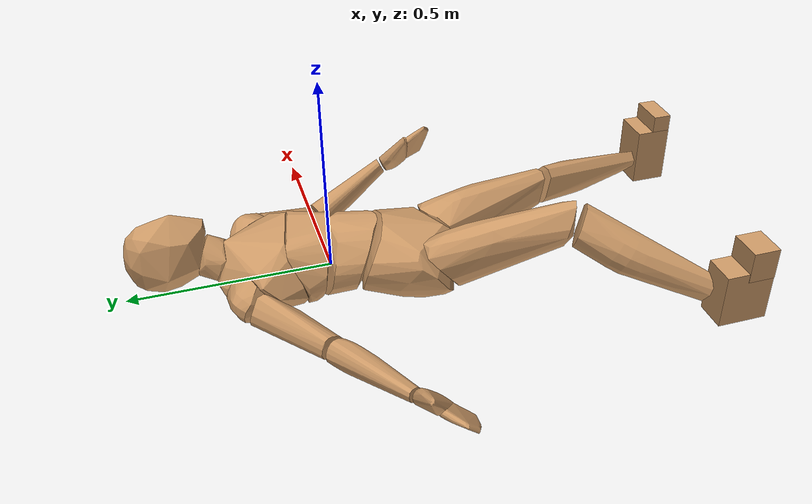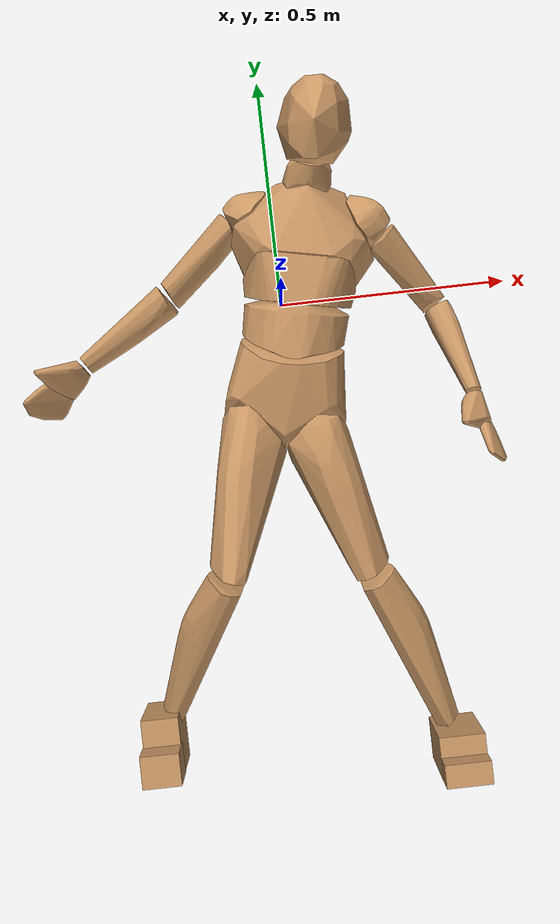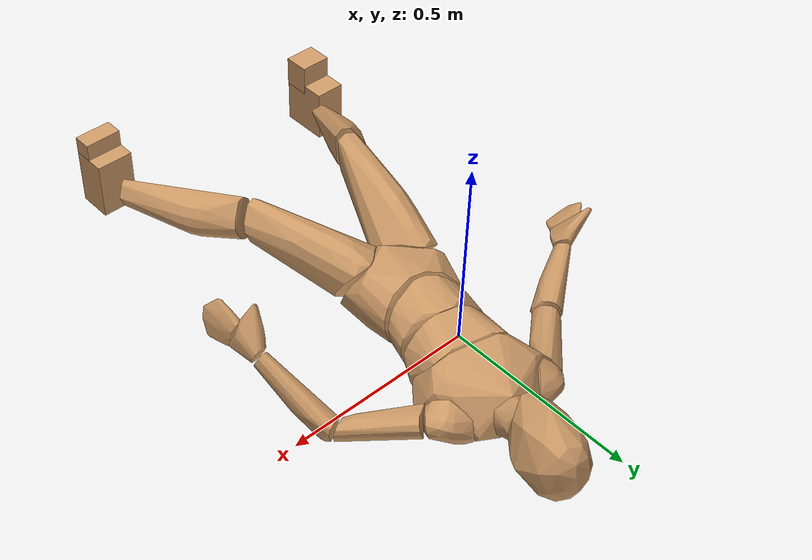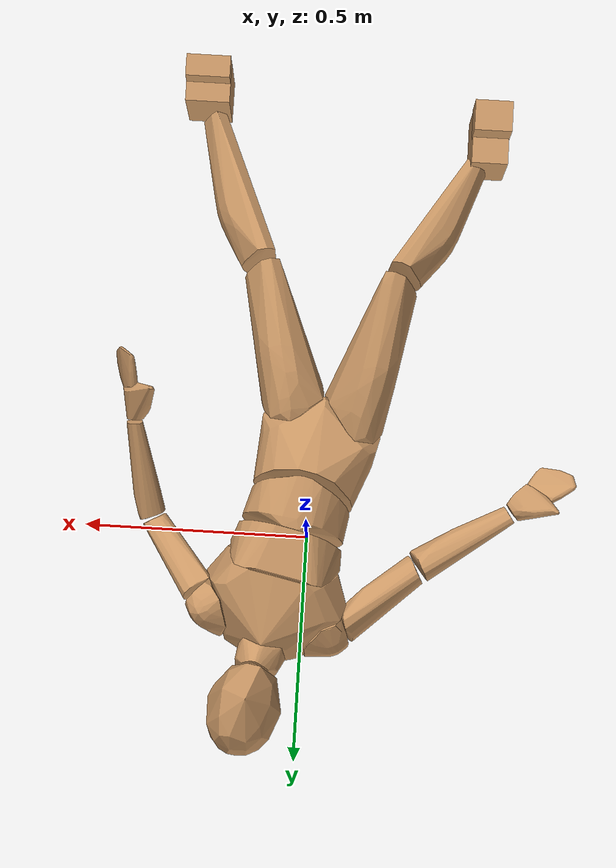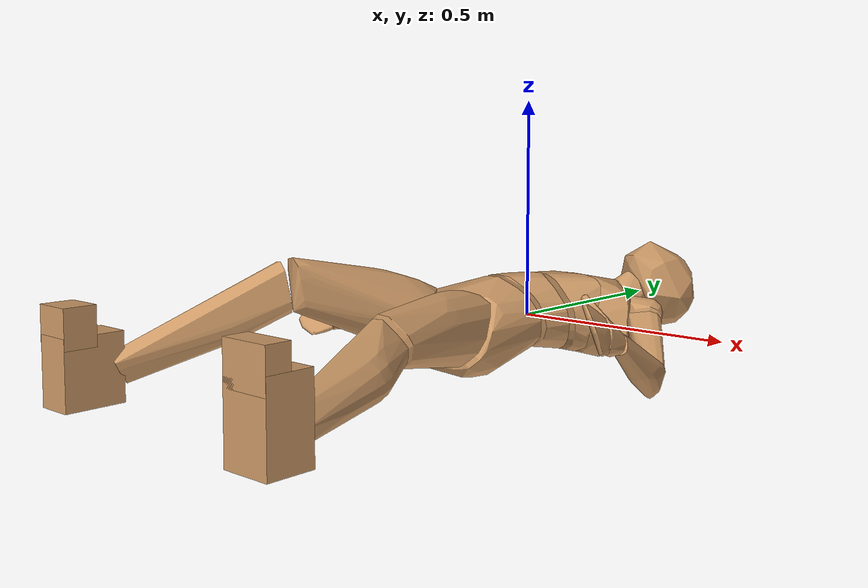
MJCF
<mujoco model="humanoid">
  <compiler coordinate="local" meshdir="assets" autolimits="true" angle="radian"/>
  <default>
    <joint damping="0.0" armature="0.01" stiffness="0.0" limited="true"/>
    <geom conaffinity="1" condim="3" contype="7" margin="0.001" rgba="0.8 0.6 .4 1"/>
  </default>
  <asset>
    <texture type="skybox" builtin="gradient" rgb1=".4 .5 .6" rgb2="0 0 0" width="100" height="100"/>
    <texture builtin="flat" height="1278" mark="cross" markrgb="1 1 1" name="texgeom" random="0.01" rgb1="0.8 0.6 0.4" rgb2="0.8 0.6 0.4" type="cube" width="127"/>
    <texture builtin="checker" height="100" name="texplane" rgb1="0 0 0" rgb2="0.8 0.8 0.8" type="2d" width="100"/>
    <material name="MatPlane" reflectance="0.5" shininess="1" specular="1" texrepeat="60 60" texture="texplane"/>
    <material name="geom" texture="texgeom" texuniform="true"/>
    <mesh file="Pelvis.stl" name="Pelvis_mesh"/>
    <mesh file="L_Hip.stl" name="L_Hip_mesh"/>
    <mesh file="R_Hip.stl" name="R_Hip_mesh"/>
    <mesh file="Torso.stl" name="Torso_mesh"/>
    <mesh file="L_Knee.stl" name="L_Knee_mesh"/>
    <mesh file="R_Knee.stl" name="R_Knee_mesh"/>
    <mesh file="Spine.stl" name="Spine_mesh"/>
    <mesh file="L_Ankle.stl" name="L_Ankle_mesh"/>
    <mesh file="R_Ankle.stl" name="R_Ankle_mesh"/>
    <mesh file="Chest.stl" name="Chest_mesh"/>
    <mesh file="L_Toe.stl" name="L_Toe_mesh"/>
    <mesh file="R_Toe.stl" name="R_Toe_mesh"/>
    <mesh file="Neck.stl" name="Neck_mesh"/>
    <mesh file="L_Thorax.stl" name="L_Thorax_mesh"/>
    <mesh file="R_Thorax.stl" name="R_Thorax_mesh"/>
    <mesh file="Head.stl" name="Head_mesh"/>
    <mesh file="L_Shoulder.stl" name="L_Shoulder_mesh"/>
    <mesh file="R_Shoulder.stl" name="R_Shoulder_mesh"/>
    <mesh file="L_Elbow.stl" name="L_Elbow_mesh"/>
    <mesh file="R_Elbow.stl" name="R_Elbow_mesh"/>
    <mesh file="L_Wrist.stl" name="L_Wrist_mesh"/>
    <mesh file="R_Wrist.stl" name="R_Wrist_mesh"/>
    <mesh file="L_Hand.stl" name="L_Hand_mesh"/>
    <mesh file="R_Hand.stl" name="R_Hand_mesh"/>
  </asset>
  <worldbody>
    <light cutoff="100" diffuse="1 1 1" dir="-0 0 -1.3" directional="true" exponent="1" pos="0 0 1.3" specular=".1 .1 .1"/>
    <body name="Pelvis" pos="-0.0048 -0.1882 0.0121">
      <freejoint name="Pelvis"/>
      <geom type="mesh" mesh="Pelvis_mesh" density="1000" contype="1" conaffinity="1"/>
      <body name="L_Hip" pos="0.033 -0.0879 -0.0124">
        <joint name="L_Hip_x" type="hinge" pos="0 0 0" axis="1 0 0" user="800 80 1 500" armature="0.01" range="-1.57 1.57" damping="0.1" stiffness="100"/>
        <joint name="L_Hip_y" type="hinge" pos="0 0 0" axis="0 1 0" user="800 80 1 500" armature="0.01" range="-1.57 1.57" damping="0.1" stiffness="100"/>
        <joint name="L_Hip_z" type="hinge" pos="0 0 0" axis="0 0 1" user="800 80 1 500" armature="0.01" range="-1.57 1.57" damping="0.1" stiffness="100"/>
        <geom type="mesh" mesh="L_Hip_mesh" density="1000" contype="1" conaffinity="1"/>
        <body name="L_Knee" pos="0.1242 -0.3536 0.0442">
          <joint name="L_Knee_x" type="hinge" pos="0 0 0" axis="1 0 0" user="800 80 1 500" armature="0.01" range="-1.57 1.57" damping="0.1" stiffness="100"/>
          <joint name="L_Knee_y" type="hinge" pos="0 0 0" axis="0 1 0" user="800 80 1 500" armature="0.01" range="-1.57 1.57" damping="0.1" stiffness="100"/>
          <joint name="L_Knee_z" type="hinge" pos="0 0 0" axis="0 0 1" user="800 80 1 500" armature="0.01" range="-1.57 1.57" damping="0.1" stiffness="100"/>
          <geom type="mesh" mesh="L_Knee_mesh" density="1000" contype="1" conaffinity="1"/>
          <body name="L_Ankle" pos="0.1224 -0.3668 -0.0704">
            <joint name="L_Ankle_x" type="hinge" pos="0 0 0" axis="1 0 0" user="800 80 1 500" armature="0.01" range="-1.57 1.57" damping="0.1" stiffness="100"/>
            <joint name="L_Ankle_y" type="hinge" pos="0 0 0" axis="0 1 0" user="800 80 1 500" armature="0.01" range="-1.57 1.57" damping="0.1" stiffness="100"/>
            <joint name="L_Ankle_z" type="hinge" pos="0 0 0" axis="0 0 1" user="800 80 1 500" armature="0.01" range="-1.57 1.57" damping="0.1" stiffness="100"/>
            <geom density="338.2488" type="box" pos="0.0108 -0.0277 0.0321" size="0.0506 0.0472 0.0796" quat="1.0000 0.0000 0.0000 0.0000"/>
            <body name="L_Toe" pos="-0.0077 -0.0701 0.1057">
              <joint name="L_Toe_x" type="hinge" pos="0 0 0" axis="1 0 0" user="500 50 1 500" armature="0.01" range="-1.57 1.57" damping="0.1" stiffness="100"/>
              <joint name="L_Toe_y" type="hinge" pos="0 0 0" axis="0 1 0" user="500 50 1 500" armature="0.01" range="-1.57 1.57" damping="0.1" stiffness="100"/>
              <joint name="L_Toe_z" type="hinge" pos="0 0 0" axis="0 0 1" user="500 50 1 500" armature="0.01" range="-1.57 1.57" damping="0.1" stiffness="100"/>
              <geom density="297.8384" type="box" pos="0.0185 0.0203 0.0131" size="0.0503 0.0251 0.0394" quat="1.0000 0.0000 0.0000 0.0000"/>
            </body>
          </body>
        </body>
      </body>
      <body name="R_Hip" pos="-0.0633 -0.0678 -0.0103">
        <joint name="R_Hip_x" type="hinge" pos="0 0 0" axis="1 0 0" user="800 80 1 500" armature="0.01" range="-1.57 1.57" damping="0.1" stiffness="100"/>
        <joint name="R_Hip_y" type="hinge" pos="0 0 0" axis="0 1 0" user="800 80 1 500" armature="0.01" range="-1.57 1.57" damping="0.1" stiffness="100"/>
        <joint name="R_Hip_z" type="hinge" pos="0 0 0" axis="0 0 1" user="800 80 1 500" armature="0.01" range="-1.57 1.57" damping="0.1" stiffness="100"/>
        <geom type="mesh" mesh="R_Hip_mesh" density="1000" contype="1" conaffinity="1"/>
        <body name="R_Knee" pos="-0.128 -0.3417 0.1173">
          <joint name="R_Knee_x" type="hinge" pos="0 0 0" axis="1 0 0" user="800 80 1 500" armature="0.01" range="-1.57 1.57" damping="0.1" stiffness="100"/>
          <joint name="R_Knee_y" type="hinge" pos="0 0 0" axis="0 1 0" user="800 80 1 500" armature="0.01" range="-1.57 1.57" damping="0.1" stiffness="100"/>
          <joint name="R_Knee_z" type="hinge" pos="0 0 0" axis="0 0 1" user="800 80 1 500" armature="0.01" range="-1.57 1.57" damping="0.1" stiffness="100"/>
          <geom type="mesh" mesh="R_Knee_mesh" density="1000" contype="1" conaffinity="1"/>
          <body name="R_Ankle" pos="-0.1573 -0.3184 -0.1645">
            <joint name="R_Ankle_x" type="hinge" pos="0 0 0" axis="1 0 0" user="800 80 1 500" armature="0.01" range="-1.57 1.57" damping="0.1" stiffness="100"/>
            <joint name="R_Ankle_y" type="hinge" pos="0 0 0" axis="0 1 0" user="800 80 1 500" armature="0.01" range="-1.57 1.57" damping="0.1" stiffness="100"/>
            <joint name="R_Ankle_z" type="hinge" pos="0 0 0" axis="0 0 1" user="800 80 1 500" armature="0.01" range="-1.57 1.57" damping="0.1" stiffness="100"/>
            <geom density="332.62534" type="box" pos="-0.0159 -0.0311 0.0154" size="0.0417 0.0656 0.0726" quat="1.0000 0.0000 0.0000 0.0000"/>
            <body name="R_Toe" pos="-0.0153 -0.0847 0.0915">
              <joint name="R_Toe_x" type="hinge" pos="0 0 0" axis="1 0 0" user="500 50 1 500" armature="0.01" range="-1.57 1.57" damping="0.1" stiffness="100"/>
              <joint name="R_Toe_y" type="hinge" pos="0 0 0" axis="0 1 0" user="500 50 1 500" armature="0.01" range="-1.57 1.57" damping="0.1" stiffness="100"/>
              <joint name="R_Toe_z" type="hinge" pos="0 0 0" axis="0 0 1" user="500 50 1 500" armature="0.01" range="-1.57 1.57" damping="0.1" stiffness="100"/>
              <geom density="248.7737" type="box" pos="-0.0005 0.0235 0.0140" size="0.0429 0.0355 0.0416" quat="1.0000 0.0000 0.0000 0.0000"/>
            </body>
          </body>
        </body>
      </body>
      <body name="Torso" pos="0.0162 0.0944 -0.0136">
        <joint name="Torso_x" type="hinge" pos="0 0 0" axis="1 0 0" user="1000 100 1 500" armature="0.01" range="-60.0000 60.0000" damping="0.1" stiffness="100"/>
        <joint name="Torso_y" type="hinge" pos="0 0 0" axis="0 1 0" user="1000 100 1 500" armature="0.01" range="-60.0000 60.0000" damping="0.1" stiffness="100"/>
        <joint name="Torso_z" type="hinge" pos="0 0 0" axis="0 0 1" user="1000 100 1 500" armature="0.01" range="-60.0000 60.0000" damping="0.1" stiffness="100"/>
        <geom type="mesh" mesh="Torso_mesh" density="1000" contype="1" conaffinity="1"/>
        <body name="Spine" pos="0.0318 0.1232 0.0073">
          <joint name="Spine_x" type="hinge" pos="0 0 0" axis="1 0 0" user="1000 100 1 500" armature="0.01" range="-60.0000 60.0000" damping="0.1" stiffness="100"/>
          <joint name="Spine_y" type="hinge" pos="0 0 0" axis="0 1 0" user="1000 100 1 500" armature="0.01" range="-60.0000 60.0000" damping="0.1" stiffness="100"/>
          <joint name="Spine_z" type="hinge" pos="0 0 0" axis="0 0 1" user="1000 100 1 500" armature="0.01" range="-60.0000 60.0000" damping="0.1" stiffness="100"/>
          <geom type="mesh" mesh="Spine_mesh" density="1000" contype="1" conaffinity="1"/>
          <body name="Chest" pos="0.0112 0.0455 0.0146">
            <joint name="Chest_x" type="hinge" pos="0 0 0" axis="1 0 0" user="1000 100 1 500" armature="0.01" range="-60.0000 60.0000" damping="0.1" stiffness="100"/>
            <joint name="Chest_y" type="hinge" pos="0 0 0" axis="0 1 0" user="1000 100 1 500" armature="0.01" range="-60.0000 60.0000" damping="0.1" stiffness="100"/>
            <joint name="Chest_z" type="hinge" pos="0 0 0" axis="0 0 1" user="1000 100 1 500" armature="0.01" range="-60.0000 60.0000" damping="0.1" stiffness="100"/>
            <geom type="mesh" mesh="Chest_mesh" density="1000" contype="1" conaffinity="1"/>
            <body name="Neck" pos="0.0305 0.1759 -0.02">
              <joint name="Neck_x" type="hinge" pos="0 0 0" axis="1 0 0" user="500 50 1 250" armature="0.01" range="-1.57 1.57" damping="0.1" stiffness="100"/>
              <joint name="Neck_y" type="hinge" pos="0 0 0" axis="0 1 0" user="500 50 1 250" armature="0.01" range="-1.57 1.57" damping="0.1" stiffness="100"/>
              <joint name="Neck_z" type="hinge" pos="0 0 0" axis="0 0 1" user="500 50 1 250" armature="0.01" range="-1.57 1.57" damping="0.1" stiffness="100"/>
              <geom type="mesh" mesh="Neck_mesh" density="1000" contype="1" conaffinity="1"/>
              <body name="Head" pos="0.0194 0.0616 0.0498">
                <joint name="Head_x" type="hinge" pos="0 0 0" axis="1 0 0" user="500 50 1 250" armature="0.01" range="-1.57 1.57" damping="0.1" stiffness="100"/>
                <joint name="Head_y" type="hinge" pos="0 0 0" axis="0 1 0" user="500 50 1 250" armature="0.01" range="-1.57 1.57" damping="0.1" stiffness="100"/>
                <joint name="Head_z" type="hinge" pos="0 0 0" axis="0 0 1" user="500 50 1 250" armature="0.01" range="-1.57 1.57" damping="0.1" stiffness="100"/>
                <geom type="mesh" mesh="Head_mesh" density="1000" contype="1" conaffinity="1"/>
              </body>
            </body>
            <body name="L_Thorax" pos="0.0866 0.0868 -0.0242">
              <joint name="L_Thorax_x" type="hinge" pos="0 0 0" axis="1 0 0" user="500 50 1 500" armature="0.01" range="-1.57 1.57" damping="0.1" stiffness="100"/>
              <joint name="L_Thorax_y" type="hinge" pos="0 0 0" axis="0 1 0" user="500 50 1 500" armature="0.01" range="-1.57 1.57" damping="0.1" stiffness="100"/>
              <joint name="L_Thorax_z" type="hinge" pos="0 0 0" axis="0 0 1" user="500 50 1 500" armature="0.01" range="-1.57 1.57" damping="0.1" stiffness="100"/>
              <geom type="mesh" mesh="L_Thorax_mesh" density="1000" contype="1" conaffinity="1"/>
              <body name="L_Shoulder" pos="0.0857 -0.0116 0.0032">
                <joint name="L_Shoulder_x" type="hinge" pos="0 0 0" axis="1 0 0" user="500 50 1 500" armature="0.01" range="-1.57 1.57" damping="0.1" stiffness="100"/>
                <joint name="L_Shoulder_y" type="hinge" pos="0 0 0" axis="0 1 0" user="500 50 1 500" armature="0.01" range="-1.57 1.57" damping="0.1" stiffness="100"/>
                <joint name="L_Shoulder_z" type="hinge" pos="0 0 0" axis="0 0 1" user="500 50 1 500" armature="0.01" range="-1.57 1.57" damping="0.1" stiffness="100"/>
                <geom type="mesh" mesh="L_Shoulder_mesh" density="1000" contype="1" conaffinity="1"/>
                <body name="L_Elbow" pos="0.1302 -0.191 -0.1052">
                  <joint name="L_Elbow_x" type="hinge" pos="0 0 0" axis="1 0 0" user="500 50 1 150" armature="0.01" range="-720.0000 720.0000" damping="0.1" stiffness="100"/>
                  <joint name="L_Elbow_y" type="hinge" pos="0 0 0" axis="0 1 0" user="500 50 1 150" armature="0.01" range="-720.0000 720.0000" damping="0.1" stiffness="100"/>
                  <joint name="L_Elbow_z" type="hinge" pos="0 0 0" axis="0 0 1" user="500 50 1 150" armature="0.01" range="-720.0000 720.0000" damping="0.1" stiffness="100"/>
                  <geom type="mesh" mesh="L_Elbow_mesh" density="1000" contype="1" conaffinity="1"/>
                  <body name="L_Wrist" pos="0.0497 -0.2029 0.1247">
                    <joint name="L_Wrist_x" type="hinge" pos="0 0 0" axis="1 0 0" user="300 30 1 150" armature="0.01" range="-1.57 1.57" damping="0.1" stiffness="100"/>
                    <joint name="L_Wrist_y" type="hinge" pos="0 0 0" axis="0 1 0" user="300 30 1 150" armature="0.01" range="-1.57 1.57" damping="0.1" stiffness="100"/>
                    <joint name="L_Wrist_z" type="hinge" pos="0 0 0" axis="0 0 1" user="300 30 1 150" armature="0.01" range="-1.57 1.57" damping="0.1" stiffness="100"/>
                    <geom type="mesh" mesh="L_Wrist_mesh" density="1000" contype="1" conaffinity="1"/>
                    <body name="L_Hand" pos="0.0151 -0.0734 0.0257">
                      <joint name="L_Hand_x" type="hinge" pos="0 0 0" axis="1 0 0" user="300 30 1 150" armature="0.01" range="-1.57 1.57" damping="0.1" stiffness="100"/>
                      <joint name="L_Hand_y" type="hinge" pos="0 0 0" axis="0 1 0" user="300 30 1 150" armature="0.01" range="-1.57 1.57" damping="0.1" stiffness="100"/>
                      <joint name="L_Hand_z" type="hinge" pos="0 0 0" axis="0 0 1" user="300 30 1 150" armature="0.01" range="-1.57 1.57" damping="0.1" stiffness="100"/>
                      <geom type="mesh" mesh="L_Hand_mesh" density="1000" contype="1" conaffinity="1"/>
                    </body>
                  </body>
                </body>
              </body>
            </body>
            <body name="R_Thorax" pos="-0.0497 0.1114 -0.0284">
              <joint name="R_Thorax_x" type="hinge" pos="0 0 0" axis="1 0 0" user="500 50 1 150" armature="0.01" range="-1.57 1.57" damping="0.1" stiffness="100"/>
              <joint name="R_Thorax_y" type="hinge" pos="0 0 0" axis="0 1 0" user="500 50 1 150" armature="0.01" range="-1.57 1.57" damping="0.1" stiffness="100"/>
              <joint name="R_Thorax_z" type="hinge" pos="0 0 0" axis="0 0 1" user="500 50 1 150" armature="0.01" range="-1.57 1.57" damping="0.1" stiffness="100"/>
              <geom type="mesh" mesh="R_Thorax_mesh" density="1000" contype="1" conaffinity="1"/>
              <body name="R_Shoulder" pos="-0.085 0.0199 -0.0234">
                <joint name="R_Shoulder_x" type="hinge" pos="0 0 0" axis="1 0 0" user="500 50 1 250" armature="0.01" range="-1.57 1.57" damping="0.1" stiffness="100"/>
                <joint name="R_Shoulder_y" type="hinge" pos="0 0 0" axis="0 1 0" user="500 50 1 250" armature="0.01" range="-1.57 1.57" damping="0.1" stiffness="100"/>
                <joint name="R_Shoulder_z" type="hinge" pos="0 0 0" axis="0 0 1" user="500 50 1 250" armature="0.01" range="-1.57 1.57" damping="0.1" stiffness="100"/>
                <geom type="mesh" mesh="R_Shoulder_mesh" density="1000" contype="1" conaffinity="1"/>
                <body name="R_Elbow" pos="-0.1718 -0.1671 -0.0249">
                  <joint name="R_Elbow_x" type="hinge" pos="0 0 0" axis="1 0 0" user="500 50 1 150" armature="0.01" range="-720.0000 720.0000" damping="0.1" stiffness="100"/>
                  <joint name="R_Elbow_y" type="hinge" pos="0 0 0" axis="0 1 0" user="500 50 1 150" armature="0.01" range="-720.0000 720.0000" damping="0.1" stiffness="100"/>
                  <joint name="R_Elbow_z" type="hinge" pos="0 0 0" axis="0 0 1" user="500 50 1 150" armature="0.01" range="-720.0000 720.0000" damping="0.1" stiffness="100"/>
                  <geom type="mesh" mesh="R_Elbow_mesh" density="1000" contype="1" conaffinity="1"/>
                  <body name="R_Wrist" pos="-0.212 -0.1288 -0.004">
                    <joint name="R_Wrist_x" type="hinge" pos="0 0 0" axis="1 0 0" user="300 30 1 150" armature="0.01" range="-1.57 1.57" damping="0.1" stiffness="100"/>
                    <joint name="R_Wrist_y" type="hinge" pos="0 0 0" axis="0 1 0" user="300 30 1 150" armature="0.01" range="-1.57 1.57" damping="0.1" stiffness="100"/>
                    <joint name="R_Wrist_z" type="hinge" pos="0 0 0" axis="0 0 1" user="300 30 1 150" armature="0.01" range="-1.57 1.57" damping="0.1" stiffness="100"/>
                    <geom type="mesh" mesh="R_Wrist_mesh" density="1000" contype="1" conaffinity="1"/>
                    <body name="R_Hand" pos="-0.0615 -0.0475 -0.0005">
                      <joint name="R_Hand_x" type="hinge" pos="0 0 0" axis="1 0 0" user="300 30 1 150" armature="0.01" range="-1.57 1.57" damping="0.1" stiffness="100"/>
                      <joint name="R_Hand_y" type="hinge" pos="0 0 0" axis="0 1 0" user="300 30 1 150" armature="0.01" range="-1.57 1.57" damping="0.1" stiffness="100"/>
                      <joint name="R_Hand_z" type="hinge" pos="0 0 0" axis="0 0 1" user="300 30 1 150" armature="0.01" range="-1.57 1.57" damping="0.1" stiffness="100"/>
                      <geom type="mesh" mesh="R_Hand_mesh" density="1000" contype="1" conaffinity="1"/>
                    </body>
                  </body>
                </body>
              </body>
            </body>
          </body>
        </body>
      </body>
    </body>
  </worldbody>
  <actuator>
    <motor name="L_Hip_x" joint="L_Hip_x" gear="1"/>
    <motor name="L_Hip_y" joint="L_Hip_y" gear="1"/>
    <motor name="L_Hip_z" joint="L_Hip_z" gear="1"/>
    <motor name="L_Knee_x" joint="L_Knee_x" gear="1"/>
    <motor name="L_Knee_y" joint="L_Knee_y" gear="1"/>
    <motor name="L_Knee_z" joint="L_Knee_z" gear="1"/>
    <motor name="L_Ankle_x" joint="L_Ankle_x" gear="1"/>
    <motor name="L_Ankle_y" joint="L_Ankle_y" gear="1"/>
    <motor name="L_Ankle_z" joint="L_Ankle_z" gear="1"/>
    <motor name="L_Toe_x" joint="L_Toe_x" gear="1"/>
    <motor name="L_Toe_y" joint="L_Toe_y" gear="1"/>
    <motor name="L_Toe_z" joint="L_Toe_z" gear="1"/>
    <motor name="R_Hip_x" joint="R_Hip_x" gear="1"/>
    <motor name="R_Hip_y" joint="R_Hip_y" gear="1"/>
    <motor name="R_Hip_z" joint="R_Hip_z" gear="1"/>
    <motor name="R_Knee_x" joint="R_Knee_x" gear="1"/>
    <motor name="R_Knee_y" joint="R_Knee_y" gear="1"/>
    <motor name="R_Knee_z" joint="R_Knee_z" gear="1"/>
    <motor name="R_Ankle_x" joint="R_Ankle_x" gear="1"/>
    <motor name="R_Ankle_y" joint="R_Ankle_y" gear="1"/>
    <motor name="R_Ankle_z" joint="R_Ankle_z" gear="1"/>
    <motor name="R_Toe_x" joint="R_Toe_x" gear="1"/>
    <motor name="R_Toe_y" joint="R_Toe_y" gear="1"/>
    <motor name="R_Toe_z" joint="R_Toe_z" gear="1"/>
    <motor name="Torso_x" joint="Torso_x" gear="1"/>
    <motor name="Torso_y" joint="Torso_y" gear="1"/>
    <motor name="Torso_z" joint="Torso_z" gear="1"/>
    <motor name="Spine_x" joint="Spine_x" gear="1"/>
    <motor name="Spine_y" joint="Spine_y" gear="1"/>
    <motor name="Spine_z" joint="Spine_z" gear="1"/>
    <motor name="Chest_x" joint="Chest_x" gear="1"/>
    <motor name="Chest_y" joint="Chest_y" gear="1"/>
    <motor name="Chest_z" joint="Chest_z" gear="1"/>
    <motor name="Neck_x" joint="Neck_x" gear="1"/>
    <motor name="Neck_y" joint="Neck_y" gear="1"/>
    <motor name="Neck_z" joint="Neck_z" gear="1"/>
    <motor name="Head_x" joint="Head_x" gear="1"/>
    <motor name="Head_y" joint="Head_y" gear="1"/>
    <motor name="Head_z" joint="Head_z" gear="1"/>
    <motor name="L_Thorax_x" joint="L_Thorax_x" gear="1"/>
    <motor name="L_Thorax_y" joint="L_Thorax_y" gear="1"/>
    <motor name="L_Thorax_z" joint="L_Thorax_z" gear="1"/>
    <motor name="L_Shoulder_x" joint="L_Shoulder_x" gear="1"/>
    <motor name="L_Shoulder_y" joint="L_Shoulder_y" gear="1"/>
    <motor name="L_Shoulder_z" joint="L_Shoulder_z" gear="1"/>
    <motor name="L_Elbow_x" joint="L_Elbow_x" gear="1"/>
    <motor name="L_Elbow_y" joint="L_Elbow_y" gear="1"/>
    <motor name="L_Elbow_z" joint="L_Elbow_z" gear="1"/>
    <motor name="L_Wrist_x" joint="L_Wrist_x" gear="1"/>
    <motor name="L_Wrist_y" joint="L_Wrist_y" gear="1"/>
    <motor name="L_Wrist_z" joint="L_Wrist_z" gear="1"/>
    <motor name="L_Hand_x" joint="L_Hand_x" gear="1"/>
    <motor name="L_Hand_y" joint="L_Hand_y" gear="1"/>
    <motor name="L_Hand_z" joint="L_Hand_z" gear="1"/>
    <motor name="R_Thorax_x" joint="R_Thorax_x" gear="1"/>
    <motor name="R_Thorax_y" joint="R_Thorax_y" gear="1"/>
    <motor name="R_Thorax_z" joint="R_Thorax_z" gear="1"/>
    <motor name="R_Shoulder_x" joint="R_Shoulder_x" gear="1"/>
    <motor name="R_Shoulder_y" joint="R_Shoulder_y" gear="1"/>
    <motor name="R_Shoulder_z" joint="R_Shoulder_z" gear="1"/>
    <motor name="R_Elbow_x" joint="R_Elbow_x" gear="1"/>
    <motor name="R_Elbow_y" joint="R_Elbow_y" gear="1"/>
    <motor name="R_Elbow_z" joint="R_Elbow_z" gear="1"/>
    <motor name="R_Wrist_x" joint="R_Wrist_x" gear="1"/>
    <motor name="R_Wrist_y" joint="R_Wrist_y" gear="1"/>
    <motor name="R_Wrist_z" joint="R_Wrist_z" gear="1"/>
    <motor name="R_Hand_x" joint="R_Hand_x" gear="1"/>
    <motor name="R_Hand_y" joint="R_Hand_y" gear="1"/>
    <motor name="R_Hand_z" joint="R_Hand_z" gear="1"/>
  </actuator>
  <contact>
    <exclude body1="Torso" body2="Chest"/>
    <exclude body1="Head" body2="Chest"/>
    <exclude body1="R_Knee" body2="R_Toe"/>
    <exclude body1="R_Knee" body2="L_Ankle"/>
    <exclude body1="R_Knee" body2="L_Toe"/>
    <exclude body1="L_Knee" body2="L_Toe"/>
    <exclude body1="L_Knee" body2="R_Ankle"/>
    <exclude body1="L_Knee" body2="R_Toe"/>
    <exclude body1="L_Shoulder" body2="Chest"/>
    <exclude body1="R_Shoulder" body2="Chest"/>
  </contact>
  <sensor/>
  <size njmax="2500" nconmax="500"/>
</mujoco>
